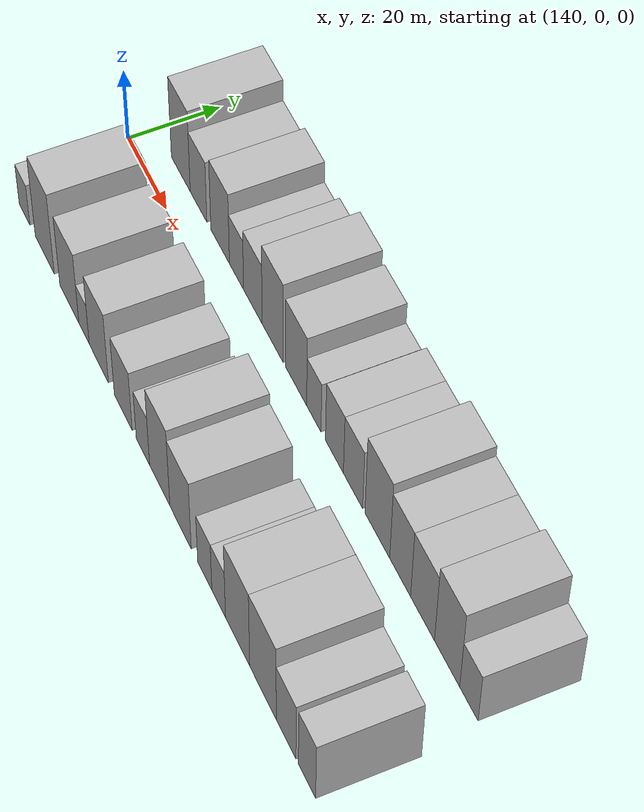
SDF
<sdf version="1.6">
 <world name="default">
  <model name="building_15">
   <static>1</static>
   <pose>153.0461 16.0000 0 0.000000 0.000000 1.570796</pose>
   <link name="link">
    <pose>0 0 12.00 0 0 0</pose>
    <collision name="collision"><geometry><box><size>20.0000 9.7351 24.0000</size></box></geometry></collision>
    <visual name="visual">
     <cast_shadows>0</cast_shadows>
     <geometry><box><size>20.0000 9.7351 24.0000</size></box></geometry>
     <material>
      <script>
       <uri>model://HANNAS_wall/materials/scripts</uri>
       <uri>model://HANNAS_wall/materials/textures</uri>
       <name>vrc/HANNAS_wall</name>
      </script>
     </material>
    </visual>
   </link>
  </model>
  <model name="building_16">
   <static>1</static>
   <pose>162.1340 16.0000 0 0.000000 0.000000 1.570796</pose>
   <link name="link">
    <pose>0 0 9.00 0 0 0</pose>
    <collision name="collision"><geometry><box><size>20.0000 8.4407 18.0000</size></box></geometry></collision>
    <visual name="visual">
     <cast_shadows>0</cast_shadows>
     <geometry><box><size>20.0000 8.4407 18.0000</size></box></geometry>
     <material>
      <script>
       <uri>model://HANNAS_wall/materials/scripts</uri>
       <uri>model://HANNAS_wall/materials/textures</uri>
       <name>vrc/HANNAS_wall</name>
      </script>
     </material>
    </visual>
   </link>
  </model>
  <model name="building_17">
   <static>1</static>
   <pose>172.9855 16.0000 0 0.000000 0.000000 1.570796</pose>
   <link name="link">
    <pose>0 0 10.50 0 0 0</pose>
    <collision name="collision"><geometry><box><size>20.0000 9.2622 21.0000</size></box></geometry></collision>
    <visual name="visual">
     <cast_shadows>0</cast_shadows>
     <geometry><box><size>20.0000 9.2622 21.0000</size></box></geometry>
     <material>
      <script>
       <uri>model://HANNAS_wall/materials/scripts</uri>
       <uri>model://HANNAS_wall/materials/textures</uri>
       <name>vrc/HANNAS_wall</name>
      </script>
     </material>
    </visual>
   </link>
  </model>
  <model name="building_18">
   <static>1</static>
   <pose>181.0841 16.0000 0 0.000000 0.000000 1.570796</pose>
   <link name="link">
    <pose>0 0 7.50 0 0 0</pose>
    <collision name="collision"><geometry><box><size>20.0000 6.9351 15.0000</size></box></geometry></collision>
    <visual name="visual">
     <cast_shadows>0</cast_shadows>
     <geometry><box><size>20.0000 6.9351 15.0000</size></box></geometry>
     <material>
      <script>
       <uri>model://HANNAS_wall/materials/scripts</uri>
       <uri>model://HANNAS_wall/materials/textures</uri>
       <name>vrc/HANNAS_wall</name>
      </script>
     </material>
    </visual>
   </link>
  </model>
  <model name="building_19">
   <static>1</static>
   <pose>189.0419 16.0000 0 0.000000 0.000000 1.570796</pose>
   <link name="link">
    <pose>0 0 9.00 0 0 0</pose>
    <collision name="collision"><geometry><box><size>20.0000 8.9804 18.0000</size></box></geometry></collision>
    <visual name="visual">
     <cast_shadows>0</cast_shadows>
     <geometry><box><size>20.0000 8.9804 18.0000</size></box></geometry>
     <material>
      <script>
       <uri>model://HANNAS_wall/materials/scripts</uri>
       <uri>model://HANNAS_wall/materials/textures</uri>
       <name>vrc/HANNAS_wall</name>
      </script>
     </material>
    </visual>
   </link>
  </model>
  <model name="building_20">
   <static>1</static>
   <pose>198.5255 16.0000 0 0.000000 0.000000 1.570796</pose>
   <link name="link">
    <pose>0 0 12.00 0 0 0</pose>
    <collision name="collision"><geometry><box><size>20.0000 9.9867 24.0000</size></box></geometry></collision>
    <visual name="visual">
     <cast_shadows>0</cast_shadows>
     <geometry><box><size>20.0000 9.9867 24.0000</size></box></geometry>
     <material>
      <script>
       <uri>model://HANNAS_wall/materials/scripts</uri>
       <uri>model://HANNAS_wall/materials/textures</uri>
       <name>vrc/HANNAS_wall</name>
      </script>
     </material>
    </visual>
   </link>
  </model>
  <model name="building_21">
   <static>1</static>
   <pose>209.4666 16.0000 0 0.000000 0.000000 1.570796</pose>
   <link name="link">
    <pose>0 0 10.50 0 0 0</pose>
    <collision name="collision"><geometry><box><size>20.0000 9.8956 21.0000</size></box></geometry></collision>
    <visual name="visual">
     <cast_shadows>0</cast_shadows>
     <geometry><box><size>20.0000 9.8956 21.0000</size></box></geometry>
     <material>
      <script>
       <uri>model://HANNAS_wall/materials/scripts</uri>
       <uri>model://HANNAS_wall/materials/textures</uri>
       <name>vrc/HANNAS_wall</name>
      </script>
     </material>
    </visual>
   </link>
  </model>
  <model name="building_22">
   <static>1</static>
   <pose>217.6967 16.0000 0 0.000000 0.000000 1.570796</pose>
   <link name="link">
    <pose>0 0 7.50 0 0 0</pose>
    <collision name="collision"><geometry><box><size>20.0000 6.5645 15.0000</size></box></geometry></collision>
    <visual name="visual">
     <cast_shadows>0</cast_shadows>
     <geometry><box><size>20.0000 6.5645 15.0000</size></box></geometry>
     <material>
      <script>
       <uri>model://HANNAS_wall/materials/scripts</uri>
       <uri>model://HANNAS_wall/materials/textures</uri>
       <name>vrc/HANNAS_wall</name>
      </script>
     </material>
    </visual>
   </link>
  </model>
  <model name="building_23">
   <static>1</static>
   <pose>227.0203 16.0000 0 0.000000 0.000000 1.570796</pose>
   <link name="link">
    <pose>0 0 9.00 0 0 0</pose>
    <collision name="collision"><geometry><box><size>20.0000 8.0828 18.0000</size></box></geometry></collision>
    <visual name="visual">
     <cast_shadows>0</cast_shadows>
     <geometry><box><size>20.0000 8.0828 18.0000</size></box></geometry>
     <material>
      <script>
       <uri>model://HANNAS_wall/materials/scripts</uri>
       <uri>model://HANNAS_wall/materials/textures</uri>
       <name>vrc/HANNAS_wall</name>
      </script>
     </material>
    </visual>
   </link>
  </model>
  <model name="building_24">
   <static>1</static>
   <pose>235.3037 16.0000 0 0.000000 0.000000 1.570796</pose>
   <link name="link">
    <pose>0 0 9.00 0 0 0</pose>
    <collision name="collision"><geometry><box><size>20.0000 8.4839 18.0000</size></box></geometry></collision>
    <visual name="visual">
     <cast_shadows>0</cast_shadows>
     <geometry><box><size>20.0000 8.4839 18.0000</size></box></geometry>
     <material>
      <script>
       <uri>model://HANNAS_wall/materials/scripts</uri>
       <uri>model://HANNAS_wall/materials/textures</uri>
       <name>vrc/HANNAS_wall</name>
      </script>
     </material>
    </visual>
   </link>
  </model>
  <model name="building_25">
   <static>1</static>
   <pose>245.9014 16.0000 0 0.000000 0.000000 1.570796</pose>
   <link name="link">
    <pose>0 0 12.00 0 0 0</pose>
    <collision name="collision"><geometry><box><size>20.0000 10.7115 24.0000</size></box></geometry></collision>
    <visual name="visual">
     <cast_shadows>0</cast_shadows>
     <geometry><box><size>20.0000 10.7115 24.0000</size></box></geometry>
     <material>
      <script>
       <uri>model://HANNAS_wall/materials/scripts</uri>
       <uri>model://HANNAS_wall/materials/textures</uri>
       <name>vrc/HANNAS_wall</name>
      </script>
     </material>
    </visual>
   </link>
  </model>
  <model name="building_26">
   <static>1</static>
   <pose>255.6859 16.0000 0 0.000000 0.000000 1.570796</pose>
   <link name="link">
    <pose>0 0 10.50 0 0 0</pose>
    <collision name="collision"><geometry><box><size>20.0000 8.8575 21.0000</size></box></geometry></collision>
    <visual name="visual">
     <cast_shadows>0</cast_shadows>
     <geometry><box><size>20.0000 8.8575 21.0000</size></box></geometry>
     <material>
      <script>
       <uri>model://HANNAS_wall/materials/scripts</uri>
       <uri>model://HANNAS_wall/materials/textures</uri>
       <name>vrc/HANNAS_wall</name>
      </script>
     </material>
    </visual>
   </link>
  </model>
  <model name="building_27">
   <static>1</static>
   <pose>265.0890 16.0000 0 0.000000 0.000000 1.570796</pose>
   <link name="link">
    <pose>0 0 10.50 0 0 0</pose>
    <collision name="collision"><geometry><box><size>20.0000 9.9487 21.0000</size></box></geometry></collision>
    <visual name="visual">
     <cast_shadows>0</cast_shadows>
     <geometry><box><size>20.0000 9.9487 21.0000</size></box></geometry>
     <material>
      <script>
       <uri>model://HANNAS_wall/materials/scripts</uri>
       <uri>model://HANNAS_wall/materials/textures</uri>
       <name>vrc/HANNAS_wall</name>
      </script>
     </material>
    </visual>
   </link>
  </model>
  <model name="building_28">
   <static>1</static>
   <pose>275.1896 16.0000 0 0.000000 0.000000 1.570796</pose>
   <link name="link">
    <pose>0 0 12.00 0 0 0</pose>
    <collision name="collision"><geometry><box><size>20.0000 10.2523 24.0000</size></box></geometry></collision>
    <visual name="visual">
     <cast_shadows>0</cast_shadows>
     <geometry><box><size>20.0000 10.2523 24.0000</size></box></geometry>
     <material>
      <script>
       <uri>model://HANNAS_wall/materials/scripts</uri>
       <uri>model://HANNAS_wall/materials/textures</uri>
       <name>vrc/HANNAS_wall</name>
      </script>
     </material>
    </visual>
   </link>
  </model>
  <model name="building_29">
   <static>1</static>
   <pose>283.9976 16.0000 0 0.000000 0.000000 1.570796</pose>
   <link name="link">
    <pose>0 0 7.50 0 0 0</pose>
    <collision name="collision"><geometry><box><size>20.0000 7.3639 15.0000</size></box></geometry></collision>
    <visual name="visual">
     <cast_shadows>0</cast_shadows>
     <geometry><box><size>20.0000 7.3639 15.0000</size></box></geometry>
     <material>
      <script>
       <uri>model://HANNAS_wall/materials/scripts</uri>
       <uri>model://HANNAS_wall/materials/textures</uri>
       <name>vrc/HANNAS_wall</name>
      </script>
     </material>
    </visual>
   </link>
  </model>
  <model name="building_43">
   <static>1</static>
   <pose>150.1146 -16.0000 0 0.000000 0.000000 1.570796</pose>
   <link name="link">
    <pose>0 0 6.00 0 0 0</pose>
    <collision name="collision"><geometry><box><size>20.0000 5.8790 12.0000</size></box></geometry></collision>
    <visual name="visual">
     <cast_shadows>0</cast_shadows>
     <geometry><box><size>20.0000 5.8790 12.0000</size></box></geometry>
     <material>
      <script>
       <uri>model://HANNAS_wall/materials/scripts</uri>
       <uri>model://HANNAS_wall/materials/textures</uri>
       <name>vrc/HANNAS_wall</name>
      </script>
     </material>
    </visual>
   </link>
  </model>
  <model name="building_44">
   <static>1</static>
   <pose>161.1828 -16.0000 0 0.000000 0.000000 1.570796</pose>
   <link name="link">
    <pose>0 0 12.00 0 0 0</pose>
    <collision name="collision"><geometry><box><size>20.0000 10.2574 24.0000</size></box></geometry></collision>
    <visual name="visual">
     <cast_shadows>0</cast_shadows>
     <geometry><box><size>20.0000 10.2574 24.0000</size></box></geometry>
     <material>
      <script>
       <uri>model://HANNAS_wall/materials/scripts</uri>
       <uri>model://HANNAS_wall/materials/textures</uri>
       <name>vrc/HANNAS_wall</name>
      </script>
     </material>
    </visual>
   </link>
  </model>
  <model name="building_45">
   <static>1</static>
   <pose>174.3291 -16.0000 0 0.000000 0.000000 1.570796</pose>
   <link name="link">
    <pose>0 0 10.50 0 0 0</pose>
    <collision name="collision"><geometry><box><size>20.0000 10.0351 21.0000</size></box></geometry></collision>
    <visual name="visual">
     <cast_shadows>0</cast_shadows>
     <geometry><box><size>20.0000 10.0351 21.0000</size></box></geometry>
     <material>
      <script>
       <uri>model://HANNAS_wall/materials/scripts</uri>
       <uri>model://HANNAS_wall/materials/textures</uri>
       <name>vrc/HANNAS_wall</name>
      </script>
     </material>
    </visual>
   </link>
  </model>
  <model name="building_46">
   <static>1</static>
   <pose>182.0410 -16.0000 0 0.000000 0.000000 1.570796</pose>
   <link name="link">
    <pose>0 0 6.00 0 0 0</pose>
    <collision name="collision"><geometry><box><size>20.0000 5.3889 12.0000</size></box></geometry></collision>
    <visual name="visual">
     <cast_shadows>0</cast_shadows>
     <geometry><box><size>20.0000 5.3889 12.0000</size></box></geometry>
     <material>
      <script>
       <uri>model://HANNAS_wall/materials/scripts</uri>
       <uri>model://HANNAS_wall/materials/textures</uri>
       <name>vrc/HANNAS_wall</name>
      </script>
     </material>
    </visual>
   </link>
  </model>
  <model name="building_47">
   <static>1</static>
   <pose>189.6530 -16.0000 0 0.000000 0.000000 1.570796</pose>
   <link name="link">
    <pose>0 0 10.50 0 0 0</pose>
    <collision name="collision"><geometry><box><size>20.0000 9.8350 21.0000</size></box></geometry></collision>
    <visual name="visual">
     <cast_shadows>0</cast_shadows>
     <geometry><box><size>20.0000 9.8350 21.0000</size></box></geometry>
     <material>
      <script>
       <uri>model://HANNAS_wall/materials/scripts</uri>
       <uri>model://HANNAS_wall/materials/textures</uri>
       <name>vrc/HANNAS_wall</name>
      </script>
     </material>
    </visual>
   </link>
  </model>
  <model name="building_48">
   <static>1</static>
   <pose>202.0434 -16.0000 0 0.000000 0.000000 1.570796</pose>
   <link name="link">
    <pose>0 0 9.00 0 0 0</pose>
    <collision name="collision"><geometry><box><size>20.0000 8.9458 18.0000</size></box></geometry></collision>
    <visual name="visual">
     <cast_shadows>0</cast_shadows>
     <geometry><box><size>20.0000 8.9458 18.0000</size></box></geometry>
     <material>
      <script>
       <uri>model://HANNAS_wall/materials/scripts</uri>
       <uri>model://HANNAS_wall/materials/textures</uri>
       <name>vrc/HANNAS_wall</name>
      </script>
     </material>
    </visual>
   </link>
  </model>
  <model name="building_49">
   <static>1</static>
   <pose>211.8022 -16.0000 0 0.000000 0.000000 1.570796</pose>
   <link name="link">
    <pose>0 0 7.50 0 0 0</pose>
    <collision name="collision"><geometry><box><size>20.0000 6.5718 15.0000</size></box></geometry></collision>
    <visual name="visual">
     <cast_shadows>0</cast_shadows>
     <geometry><box><size>20.0000 6.5718 15.0000</size></box></geometry>
     <material>
      <script>
       <uri>model://HANNAS_wall/materials/scripts</uri>
       <uri>model://HANNAS_wall/materials/textures</uri>
       <name>vrc/HANNAS_wall</name>
      </script>
     </material>
    </visual>
   </link>
  </model>
  <model name="building_50">
   <static>1</static>
   <pose>219.9842 -16.0000 0 0.000000 0.000000 1.570796</pose>
   <link name="link">
    <pose>0 0 12.00 0 0 0</pose>
    <collision name="collision"><geometry><box><size>20.0000 9.7920 24.0000</size></box></geometry></collision>
    <visual name="visual">
     <cast_shadows>0</cast_shadows>
     <geometry><box><size>20.0000 9.7920 24.0000</size></box></geometry>
     <material>
      <script>
       <uri>model://HANNAS_wall/materials/scripts</uri>
       <uri>model://HANNAS_wall/materials/textures</uri>
       <name>vrc/HANNAS_wall</name>
      </script>
     </material>
    </visual>
   </link>
  </model>
  <model name="building_51">
   <static>1</static>
   <pose>229.9360 -16.0000 0 0.000000 0.000000 1.570796</pose>
   <link name="link">
    <pose>0 0 10.50 0 0 0</pose>
    <collision name="collision"><geometry><box><size>20.0000 10.1116 21.0000</size></box></geometry></collision>
    <visual name="visual">
     <cast_shadows>0</cast_shadows>
     <geometry><box><size>20.0000 10.1116 21.0000</size></box></geometry>
     <material>
      <script>
       <uri>model://HANNAS_wall/materials/scripts</uri>
       <uri>model://HANNAS_wall/materials/textures</uri>
       <name>vrc/HANNAS_wall</name>
      </script>
     </material>
    </visual>
   </link>
  </model>
  <model name="building_52">
   <static>1</static>
   <pose>241.2775 -16.0000 0 0.000000 0.000000 1.570796</pose>
   <link name="link">
    <pose>0 0 7.50 0 0 0</pose>
    <collision name="collision"><geometry><box><size>20.0000 6.5715 15.0000</size></box></geometry></collision>
    <visual name="visual">
     <cast_shadows>0</cast_shadows>
     <geometry><box><size>20.0000 6.5715 15.0000</size></box></geometry>
     <material>
      <script>
       <uri>model://HANNAS_wall/materials/scripts</uri>
       <uri>model://HANNAS_wall/materials/textures</uri>
       <name>vrc/HANNAS_wall</name>
      </script>
     </material>
    </visual>
   </link>
  </model>
  <model name="building_53">
   <static>1</static>
   <pose>247.6825 -16.0000 0 0.000000 0.000000 1.570796</pose>
   <link name="link">
    <pose>0 0 7.50 0 0 0</pose>
    <collision name="collision"><geometry><box><size>20.0000 6.2387 15.0000</size></box></geometry></collision>
    <visual name="visual">
     <cast_shadows>0</cast_shadows>
     <geometry><box><size>20.0000 6.2387 15.0000</size></box></geometry>
     <material>
      <script>
       <uri>model://HANNAS_wall/materials/scripts</uri>
       <uri>model://HANNAS_wall/materials/textures</uri>
       <name>vrc/HANNAS_wall</name>
      </script>
     </material>
    </visual>
   </link>
  </model>
  <model name="building_54">
   <static>1</static>
   <pose>256.2199 -16.0000 0 0.000000 0.000000 1.570796</pose>
   <link name="link">
    <pose>0 0 12.00 0 0 0</pose>
    <collision name="collision"><geometry><box><size>20.0000 10.8360 24.0000</size></box></geometry></collision>
    <visual name="visual">
     <cast_shadows>0</cast_shadows>
     <geometry><box><size>20.0000 10.8360 24.0000</size></box></geometry>
     <material>
      <script>
       <uri>model://HANNAS_wall/materials/scripts</uri>
       <uri>model://HANNAS_wall/materials/textures</uri>
       <name>vrc/HANNAS_wall</name>
      </script>
     </material>
    </visual>
   </link>
  </model>
  <model name="building_55">
   <static>1</static>
   <pose>267.4761 -16.0000 0 0.000000 0.000000 1.570796</pose>
   <link name="link">
    <pose>0 0 12.00 0 0 0</pose>
    <collision name="collision"><geometry><box><size>20.0000 11.6764 24.0000</size></box></geometry></collision>
    <visual name="visual">
     <cast_shadows>0</cast_shadows>
     <geometry><box><size>20.0000 11.6764 24.0000</size></box></geometry>
     <material>
      <script>
       <uri>model://HANNAS_wall/materials/scripts</uri>
       <uri>model://HANNAS_wall/materials/textures</uri>
       <name>vrc/HANNAS_wall</name>
      </script>
     </material>
    </visual>
   </link>
  </model>
  <model name="building_56">
   <static>1</static>
   <pose>277.5467 -16.0000 0 0.000000 0.000000 1.570796</pose>
   <link name="link">
    <pose>0 0 9.00 0 0 0</pose>
    <collision name="collision"><geometry><box><size>20.0000 8.4647 18.0000</size></box></geometry></collision>
    <visual name="visual">
     <cast_shadows>0</cast_shadows>
     <geometry><box><size>20.0000 8.4647 18.0000</size></box></geometry>
     <material>
      <script>
       <uri>model://HANNAS_wall/materials/scripts</uri>
       <uri>model://HANNAS_wall/materials/textures</uri>
       <name>vrc/HANNAS_wall</name>
      </script>
     </material>
    </visual>
   </link>
  </model>
  <model name="building_57">
   <static>1</static>
   <pose>286.4220 -16.0000 0 0.000000 0.000000 1.570796</pose>
   <link name="link">
    <pose>0 0 9.00 0 0 0</pose>
    <collision name="collision"><geometry><box><size>20.0000 7.2860 18.0000</size></box></geometry></collision>
    <visual name="visual">
     <cast_shadows>0</cast_shadows>
     <geometry><box><size>20.0000 7.2860 18.0000</size></box></geometry>
     <material>
      <script>
       <uri>model://HANNAS_wall/materials/scripts</uri>
       <uri>model://HANNAS_wall/materials/textures</uri>
       <name>vrc/HANNAS_wall</name>
      </script>
     </material>
    </visual>
   </link>
  </model>
 </world>
</sdf>
